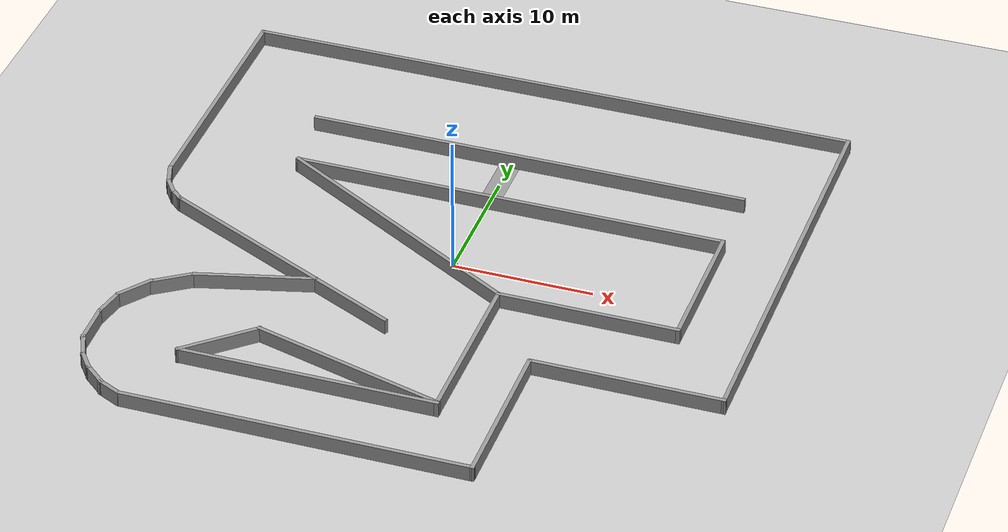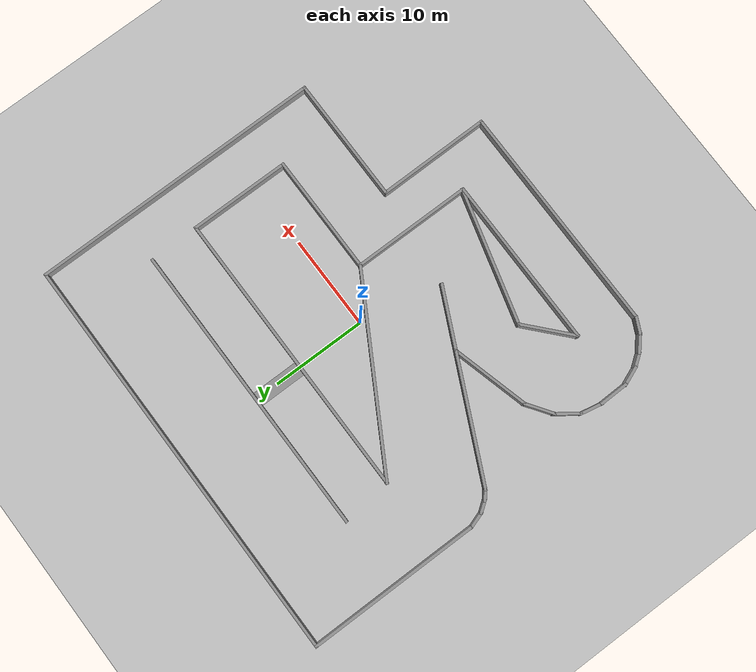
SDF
<sdf version="1.6">
 <world name="default">
  <light name="sun" type="directional">
   <cast_shadows>0</cast_shadows>
   <pose>0 0 10 0 -0 0</pose>
   <diffuse>0.8 0.8 0.8 1</diffuse>
   <specular>0.1 0.1 0.1 1</specular>
   <attenuation>
    <range>1000</range>
    <constant>0.9</constant>
    <linear>0.01</linear>
    <quadratic>0.001</quadratic>
   </attenuation>
   <direction>-0.5 0.5 -1</direction>
  </light>
  <model name="ground_plane">
   <static>1</static>
   <link name="link">
    <collision name="collision">
     <geometry><plane><normal>0 0 1</normal><size>100 100</size></plane></geometry>
     <surface>
      <friction><ode><mu>1.0</mu><mu2>1.0</mu2><slip1>0.0</slip1><slip2>0.0</slip2></ode></friction>
      <contact><ode><min_depth>0.005</min_depth></ode></contact>
     </surface>
    </collision>
    <visual name="visual">
     <cast_shadows>0</cast_shadows>
     <geometry><plane><normal>0 0 1</normal><size>100 100</size></plane></geometry>
     <material>
      <script><uri>file://media/materials/scripts/gazebo.material</uri><name>Gazebo/Grey</name></script>
     </material>
    </visual>
   </link>
  </model>
  <gravity>0 0 -9.8</gravity>
  <magnetic_field>6e-06 2.3e-05 -4.2e-05</magnetic_field>
  <atmosphere type="adiabatic"/>
  <physics name="default_physics" default="true" type="ode">
   <max_step_size>0.005</max_step_size>
   <real_time_factor>1</real_time_factor>
   <real_time_update_rate>200</real_time_update_rate>
   <ode><cfm>0.001</cfm><erp>0.2</erp><solver><type>world</type><iters>25</iters></solver></ode>
  </physics>
  <scene><ambient>0.4 0.4 0.4 1</ambient><background>0.7 0.7 0.7 1</background><shadows>1</shadows></scene>
  <spherical_coordinates>
   <surface_model>EARTH_WGS84</surface_model>
   <latitude_deg>0</latitude_deg>
   <longitude_deg>0</longitude_deg>
   <elevation>0</elevation>
   <heading_deg>0</heading_deg>
  </spherical_coordinates>
  <model name="APRS_TRACK">
   <static>1</static>
   <link name="Wall_16">
    <collision name="Wall_16_Collision">
     <geometry><box><size>31.6031 0.3 1.07</size></box></geometry>
     <pose>0 0 0.535 0 -0 0</pose>
    </collision>
    <visual name="Wall_16_Visual">
     <pose>0 0 0.535 0 -0 0</pose>
     <geometry><box><size>31.6031 0.3 1.07</size></box></geometry>
     <material>
      <script><uri>file://media/materials/scripts/gazebo.material</uri><name>Gazebo/Grey</name></script>
      <ambient>1 1 1 1</ambient>
     </material>
    </visual>
    <pose>21.9868 5.95517 0 0 0 -1.5692</pose>
   </link>
   <link name="Wall_17">
    <collision name="Wall_17_Collision">
     <geometry><box><size>13.5182 0.3 1.07</size></box></geometry>
     <pose>0 0 0.535 0 -0 0</pose>
    </collision>
    <visual name="Wall_17_Visual">
     <pose>0 0 0.535 0 -0 0</pose>
     <geometry><box><size>13.5182 0.3 1.07</size></box></geometry>
     <material>
      <script><uri>file://media/materials/scripts/gazebo.material</uri><name>Gazebo/Grey</name></script>
      <ambient>1 1 1 1</ambient>
     </material>
    </visual>
    <pose>15.4028 -9.69633 0 0 -0 3.14159</pose>
   </link>
   <link name="Wall_19">
    <collision name="Wall_19_Collision">
     <geometry><box><size>10.9003 0.3 1.07</size></box></geometry>
     <pose>0 0 0.535 0 -0 0</pose>
    </collision>
    <visual name="Wall_19_Visual">
     <pose>0 0 0.535 0 -0 0</pose>
     <geometry><box><size>10.9003 0.3 1.07</size></box></geometry>
     <material>
      <script><uri>file://media/materials/scripts/gazebo.material</uri><name>Gazebo/Grey</name></script>
      <ambient>1 1 1 1</ambient>
     </material>
    </visual>
    <pose>16.9938 1.94766 0 0 0 -1.5708</pose>
   </link>
   <link name="Wall_21">
    <collision name="Wall_21_Collision">
     <geometry><box><size>12.9 0.3 1.07</size></box></geometry>
     <pose>0 0 0.535 0 -0 0</pose>
    </collision>
    <visual name="Wall_21_Visual">
     <pose>0 0 0.535 0 -0 0</pose>
     <geometry><box><size>12.9 0.3 1.07</size></box></geometry>
     <material>
      <script><uri>file://media/materials/scripts/gazebo.material</uri><name>Gazebo/Grey</name></script>
      <ambient>1 1 1 1</ambient>
     </material>
    </visual>
    <pose>10.6938 -3.35234 0 0 -0 3.14159</pose>
   </link>
   <link name="Wall_22">
    <collision name="Wall_22_Collision">
     <geometry><box><size>21.405 0.3 1.07</size></box></geometry>
     <pose>0 0 0.535 0 -0 0</pose>
    </collision>
    <visual name="Wall_22_Visual">
     <pose>0 0 0.535 0 -0 0</pose>
     <geometry><box><size>21.405 0.3 1.07</size></box></geometry>
     <material>
      <script><uri>file://media/materials/scripts/gazebo.material</uri><name>Gazebo/Grey</name></script>
      <ambient>1 1 1 1</ambient>
     </material>
    </visual>
    <pose>-4.73123 1.94766 0 0 -0 2.61539</pose>
   </link>
   <link name="Wall_23">
    <collision name="Wall_23_Collision">
     <geometry><box><size>31.15 0.3 1.07</size></box></geometry>
     <pose>0 0 0.535 0 -0 0</pose>
    </collision>
    <visual name="Wall_23_Visual">
     <pose>0 0 0.535 0 -0 0</pose>
     <geometry><box><size>31.15 0.3 1.07</size></box></geometry>
     <material>
      <script><uri>file://media/materials/scripts/gazebo.material</uri><name>Gazebo/Grey</name></script>
      <ambient>1 1 1 1</ambient>
     </material>
    </visual>
    <pose>1.56877 7.24766 0 0 -0 0</pose>
   </link>
   <link name="Wall_25">
    <collision name="Wall_25_Collision">
     <geometry><box><size>31.6495 0.3 1.07</size></box></geometry>
     <pose>0 0 0.535 0 -0 0</pose>
    </collision>
    <visual name="Wall_25_Visual">
     <pose>0 0 0.535 0 -0 0</pose>
     <geometry><box><size>31.6495 0.3 1.07</size></box></geometry>
     <material>
      <script><uri>file://media/materials/scripts/gazebo.material</uri><name>Gazebo/Grey</name></script>
      <ambient>1 1 1 1</ambient>
     </material>
    </visual>
    <pose>1.22877 12.4877 0 0 -0 0</pose>
   </link>
   <link name="Wall_29">
    <collision name="Wall_29_Collision">
     <geometry><box><size>44.2182 0.3 1.07</size></box></geometry>
     <pose>0 0 0.535 0 -0 0</pose>
    </collision>
    <visual name="Wall_29_Visual">
     <pose>0 0 0.535 0 -0 0</pose>
     <geometry><box><size>44.2182 0.3 1.07</size></box></geometry>
     <material>
      <script><uri>file://media/materials/scripts/gazebo.material</uri><name>Gazebo/Grey</name></script>
      <ambient>1 1 1 1</ambient>
     </material>
    </visual>
    <pose>0.002767 21.6067 0 0 -0 3.14159</pose>
   </link>
   <link name="Wall_30">
    <collision name="Wall_30_Collision">
     <geometry><box><size>18.4001 0.3 1.07</size></box></geometry>
     <pose>0 0 0.535 0 -0 0</pose>
    </collision>
    <visual name="Wall_30_Visual">
     <pose>0 0 0.535 0 -0 0</pose>
     <geometry><box><size>18.4001 0.3 1.07</size></box></geometry>
     <material>
      <script><uri>file://media/materials/scripts/gazebo.material</uri><name>Gazebo/Grey</name></script>
      <ambient>1 1 1 1</ambient>
     </material>
    </visual>
    <pose>-21.9562 12.5567 0 0 0 -1.5708</pose>
   </link>
   <link name="Wall_33">
    <collision name="Wall_33_Collision">
     <geometry><box><size>24.5982 0.3 1.07</size></box></geometry>
     <pose>0 0 0.535 0 -0 0</pose>
    </collision>
    <visual name="Wall_33_Visual">
     <pose>0 0 0.535 0 -0 0</pose>
     <geometry><box><size>24.5982 0.3 1.07</size></box></geometry>
     <material>
      <script><uri>file://media/materials/scripts/gazebo.material</uri><name>Gazebo/Grey</name></script>
      <ambient>1 1 1 1</ambient>
     </material>
    </visual>
    <pose>-3.40435 -21.5742 0 0 0 -3.14134</pose>
   </link>
   <link name="Wall_35">
    <collision name="Wall_35_Collision">
     <geometry><box><size>12.9 0.3 1.07</size></box></geometry>
     <pose>0 0 0.535 0 -0 0</pose>
    </collision>
    <visual name="Wall_35_Visual">
     <pose>0 0 0.535 0 -0 0</pose>
     <geometry><box><size>12.9 0.3 1.07</size></box></geometry>
     <material>
      <script><uri>file://media/materials/scripts/gazebo.material</uri><name>Gazebo/Grey</name></script>
      <ambient>1 1 1 1</ambient>
     </material>
    </visual>
    <pose>4.39377 -9.65234 0 0 0 -1.5708</pose>
   </link>
   <link name="Wall_36">
    <collision name="Wall_36_Collision">
     <geometry><box><size>18.4 0.3 1.07</size></box></geometry>
     <pose>0 0 0.535 0 -0 0</pose>
    </collision>
    <visual name="Wall_36_Visual">
     <pose>0 0 0.535 0 -0 0</pose>
     <geometry><box><size>18.4 0.3 1.07</size></box></geometry>
     <material>
      <script><uri>file://media/materials/scripts/gazebo.material</uri><name>Gazebo/Grey</name></script>
      <ambient>1 1 1 1</ambient>
     </material>
    </visual>
    <pose>-4.65623 -15.9523 0 0 -0 3.14159</pose>
   </link>
   <link name="Wall_37">
    <collision name="Wall_37_Collision">
     <geometry><box><size>6.08335 0.3 1.07</size></box></geometry>
     <pose>0 0 0.535 0 -0 0</pose>
    </collision>
    <visual name="Wall_37_Visual">
     <pose>0 0 0.535 0 -0 0</pose>
     <geometry><box><size>6.08335 0.3 1.07</size></box></geometry>
     <material>
      <script><uri>file://media/materials/scripts/gazebo.material</uri><name>Gazebo/Grey</name></script>
      <ambient>1 1 1 1</ambient>
     </material>
    </visual>
    <pose>-11.5587 -14.0158 0 0 -0 0.733779</pose>
   </link>
   <link name="Wall_38">
    <collision name="Wall_38_Collision">
     <geometry><box><size>14.6313 0.3 1.07</size></box></geometry>
     <pose>0 0 0.535 0 -0 0</pose>
    </collision>
    <visual name="Wall_38_Visual">
     <pose>0 0 0.535 0 -0 0</pose>
     <geometry><box><size>14.6313 0.3 1.07</size></box></geometry>
     <material>
      <script><uri>file://media/materials/scripts/gazebo.material</uri><name>Gazebo/Grey</name></script>
      <ambient>1 1 1 1</ambient>
     </material>
    </visual>
    <pose>-2.50373 -13.9848 0 0 0 -0.269165</pose>
   </link>
   <link name="Wall_40">
    <collision name="Wall_40_Collision">
     <geometry><box><size>20.3888 0.3 1.07</size></box></geometry>
     <pose>0 0 0.535 0 -0 0</pose>
    </collision>
    <visual name="Wall_40_Visual">
     <pose>0 0 0.535 0 -0 0</pose>
     <geometry><box><size>20.3888 0.3 1.07</size></box></geometry>
     <material>
      <script><uri>file://media/materials/scripts/gazebo.material</uri><name>Gazebo/Grey</name></script>
      <ambient>1 1 1 1</ambient>
     </material>
    </visual>
    <pose>-10.9082 -4.18583 0 0 -0 2.69308</pose>
   </link>
   <link name="Wall_42">
    <collision name="Wall_42_Collision">
     <geometry><box><size>8.47157 0.3 1.07</size></box></geometry>
     <pose>0 0 0.535 0 -0 0</pose>
    </collision>
    <visual name="Wall_42_Visual">
     <pose>0 0 0.535 0 -0 0</pose>
     <geometry><box><size>8.47157 0.3 1.07</size></box></geometry>
     <material>
      <script><uri>file://media/materials/scripts/gazebo.material</uri><name>Gazebo/Grey</name></script>
      <ambient>1 1 1 1</ambient>
     </material>
    </visual>
    <pose>-11.7922 -6.73733 0 0 0 -2.88041</pose>
   </link>
   <link name="Wall_44">
    <collision name="Wall_44_Collision">
     <geometry><box><size>12.144 0.3 1.07</size></box></geometry>
     <pose>0 0 0.535 0 -0 0</pose>
    </collision>
    <visual name="Wall_44_Visual">
     <pose>0 0 0.535 0 -0 0</pose>
     <geometry><box><size>12.144 0.3 1.07</size></box></geometry>
     <material>
      <script><uri>file://media/materials/scripts/gazebo.material</uri><name>Gazebo/Grey</name></script>
      <ambient>1 1 1 1</ambient>
     </material>
    </visual>
    <pose>8.71075 -15.6492 0 0 -0 1.57654</pose>
   </link>
   <link name="Wall_50">
    <collision name="Wall_50_Collision">
     <geometry><box><size>2.4583 0.3 1.07</size></box></geometry>
     <pose>0 0 0.535 0 -0 0</pose>
    </collision>
    <visual name="Wall_50_Visual">
     <pose>0 0 0.535 0 -0 0</pose>
     <geometry><box><size>2.4583 0.3 1.07</size></box></geometry>
     <material>
      <script><uri>file://media/materials/scripts/gazebo.material</uri><name>Gazebo/Grey</name></script>
      <ambient>1 1 1 1</ambient>
     </material>
    </visual>
    <pose>-20.0022 -12.6544 0 0 -0 1.37206</pose>
   </link>
   <link name="Wall_51">
    <collision name="Wall_51_Collision">
     <geometry><box><size>2.84401 0.3 1.07</size></box></geometry>
     <pose>0 0 0.535 0 -0 0</pose>
    </collision>
    <visual name="Wall_51_Visual">
     <pose>0 0 0.535 0 -0 0</pose>
     <geometry><box><size>2.84401 0.3 1.07</size></box></geometry>
     <material>
      <script><uri>file://media/materials/scripts/gazebo.material</uri><name>Gazebo/Grey</name></script>
      <ambient>1 1 1 1</ambient>
     </material>
    </visual>
    <pose>-18.9914 -10.481 0 0 -0 0.943724</pose>
   </link>
   <link name="Wall_52">
    <collision name="Wall_52_Collision">
     <geometry><box><size>3.33852 0.3 1.07</size></box></geometry>
     <pose>0 0 0.535 0 -0 0</pose>
    </collision>
    <visual name="Wall_52_Visual">
     <pose>0 0 0.535 0 -0 0</pose>
     <geometry><box><size>3.33852 0.3 1.07</size></box></geometry>
     <material>
      <script><uri>file://media/materials/scripts/gazebo.material</uri><name>Gazebo/Grey</name></script>
      <ambient>1 1 1 1</ambient>
     </material>
    </visual>
    <pose>-17.0478 -8.67092 0 0 -0 0.606194</pose>
   </link>
   <link name="Wall_54">
    <collision name="Wall_54_Collision">
     <geometry><box><size>2.2294 0.3 1.07</size></box></geometry>
     <pose>0 0 0.535 0 -0 0</pose>
    </collision>
    <visual name="Wall_54_Visual">
     <pose>0 0 0.535 0 -0 0</pose>
     <geometry><box><size>2.2294 0.3 1.07</size></box></geometry>
     <material>
      <script><uri>file://media/materials/scripts/gazebo.material</uri><name>Gazebo/Grey</name></script>
      <ambient>1 1 1 1</ambient>
     </material>
    </visual>
    <pose>-19.7996 -17.5656 0 0 0 -1.19112</pose>
   </link>
   <link name="Wall_55">
    <collision name="Wall_55_Collision">
     <geometry><box><size>1.74317 0.3 1.07</size></box></geometry>
     <pose>0 0 0.535 0 -0 0</pose>
    </collision>
    <visual name="Wall_55_Visual">
     <pose>0 0 0.535 0 -0 0</pose>
     <geometry><box><size>1.74317 0.3 1.07</size></box></geometry>
     <material>
      <script><uri>file://media/materials/scripts/gazebo.material</uri><name>Gazebo/Grey</name></script>
      <ambient>1 1 1 1</ambient>
     </material>
    </visual>
    <pose>-18.9974 -19.0432 0 0 0 -0.936774</pose>
   </link>
   <link name="Wall_56">
    <collision name="Wall_56_Collision">
     <geometry><box><size>2.14849 0.3 1.07</size></box></geometry>
     <pose>0 0 0.535 0 -0 0</pose>
    </collision>
    <visual name="Wall_56_Visual">
     <pose>0 0 0.535 0 -0 0</pose>
     <geometry><box><size>2.14849 0.3 1.07</size></box></geometry>
     <material>
      <script><uri>file://media/materials/scripts/gazebo.material</uri><name>Gazebo/Grey</name></script>
      <ambient>1 1 1 1</ambient>
     </material>
    </visual>
    <pose>-17.8729 -20.2315 0 0 0 -0.716492</pose>
   </link>
   <link name="Wall_57">
    <collision name="Wall_57_Collision">
     <geometry><box><size>1.95183 0.3 1.07</size></box></geometry>
     <pose>0 0 0.535 0 -0 0</pose>
    </collision>
    <visual name="Wall_57_Visual">
     <pose>0 0 0.535 0 -0 0</pose>
     <geometry><box><size>1.95183 0.3 1.07</size></box></geometry>
     <material>
      <script><uri>file://media/materials/scripts/gazebo.material</uri><name>Gazebo/Grey</name></script>
      <ambient>1 1 1 1</ambient>
     </material>
    </visual>
    <pose>-16.4623 -21.1976 0 0 0 -0.44976</pose>
   </link>
   <link name="Wall_59">
    <collision name="Wall_59_Collision">
     <geometry><box><size>1.33303 0.3 1.07</size></box></geometry>
     <pose>0 0 0.535 0 -0 0</pose>
    </collision>
    <visual name="Wall_59_Visual">
     <pose>0 0 0.535 0 -0 0</pose>
     <geometry><box><size>1.33303 0.3 1.07</size></box></geometry>
     <material>
      <script><uri>file://media/materials/scripts/gazebo.material</uri><name>Gazebo/Grey</name></script>
      <ambient>1 1 1 1</ambient>
     </material>
    </visual>
    <pose>-20.3502 0.507165 0 0 -0 2.4295</pose>
   </link>
   <link name="Wall_60">
    <collision name="Wall_60_Collision">
     <geometry><box><size>1.53107 0.3 1.07</size></box></geometry>
     <pose>0 0 0.535 0 -0 0</pose>
    </collision>
    <visual name="Wall_60_Visual">
     <pose>0 0 0.535 0 -0 0</pose>
     <geometry><box><size>1.53107 0.3 1.07</size></box></geometry>
     <material>
      <script><uri>file://media/materials/scripts/gazebo.material</uri><name>Gazebo/Grey</name></script>
      <ambient>1 1 1 1</ambient>
     </material>
    </visual>
    <pose>-21.1002 1.34466 0 0 -0 2.1935</pose>
   </link>
   <link name="Wall_61">
    <collision name="Wall_61_Collision">
     <geometry><box><size>1.92248 0.3 1.07</size></box></geometry>
     <pose>0 0 0.535 0 -0 0</pose>
    </collision>
    <visual name="Wall_61_Visual">
     <pose>0 0 0.535 0 -0 0</pose>
     <geometry><box><size>1.92248 0.3 1.07</size></box></geometry>
     <material>
      <script><uri>file://media/materials/scripts/gazebo.material</uri><name>Gazebo/Grey</name></script>
      <ambient>1 1 1 1</ambient>
     </material>
    </visual>
    <pose>-21.7157 2.61416 0 0 -0 1.89255</pose>
   </link>
   <link name="Wall_63">
    <collision name="Wall_63_Collision">
     <geometry><box><size>5.01371 1.5 0.001</size></box></geometry>
     <pose>0 0 0.0005 0 -0 0</pose>
    </collision>
    <visual name="Wall_63_Visual">
     <pose>0 0 0.0005 0 -0 0</pose>
     <geometry><box><size>5.01371 1.5 0.001</size></box></geometry>
     <material>
      <script><uri>file://media/materials/scripts/gazebo.material</uri><name>Gazebo/Grey</name></script>
      <ambient>1 1 1 1</ambient>
     </material>
    </visual>
    <pose>-0.062636 9.88768 0 0 0 -1.5708</pose>
   </link>
   <link name="Wall_65">
    <collision name="Wall_65_Collision">
     <geometry><box><size>3.25757 0.3 1.07</size></box></geometry>
     <pose>0 0 0.535 0 -0 0</pose>
    </collision>
    <visual name="Wall_65_Visual">
     <pose>0 0 0.535 0 -0 0</pose>
     <geometry><box><size>3.25757 0.3 1.07</size></box></geometry>
     <material>
      <script><uri>file://media/materials/scripts/gazebo.material</uri><name>Gazebo/Grey</name></script>
      <ambient>1 1 1 1</ambient>
     </material>
    </visual>
    <pose>-20.1862 -15.1908 0 0 -0 1.59041</pose>
   </link>
   <static>1</static>
  </model>
 </world>
</sdf>
